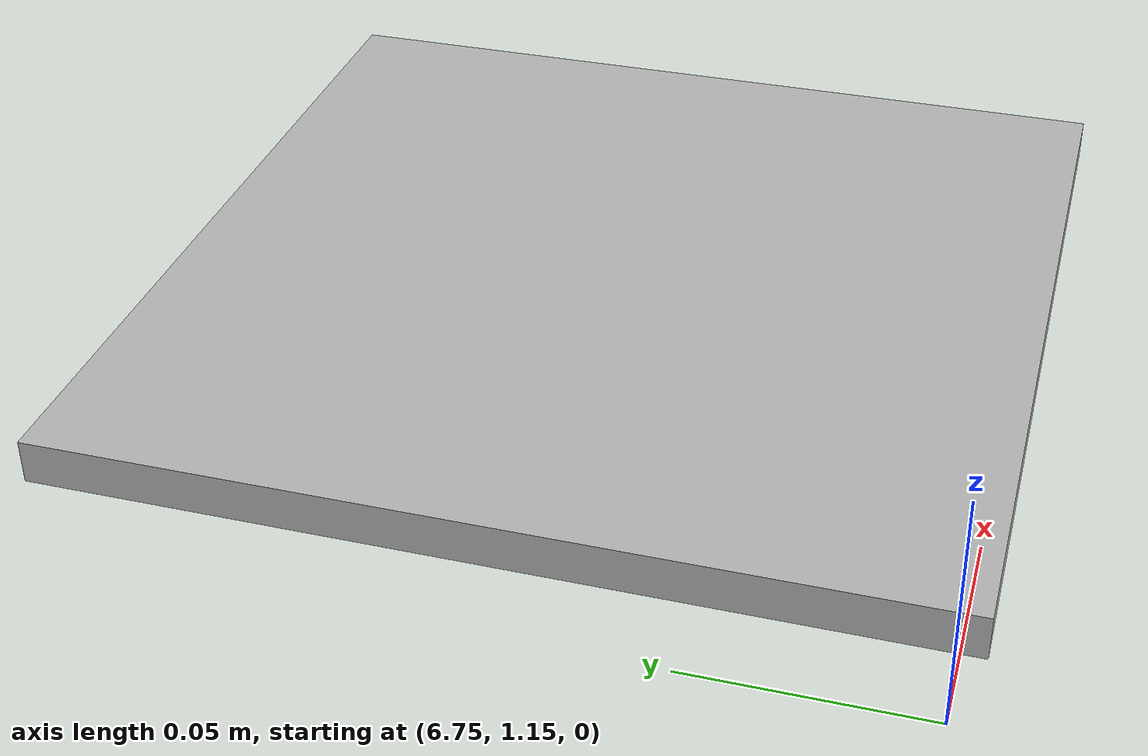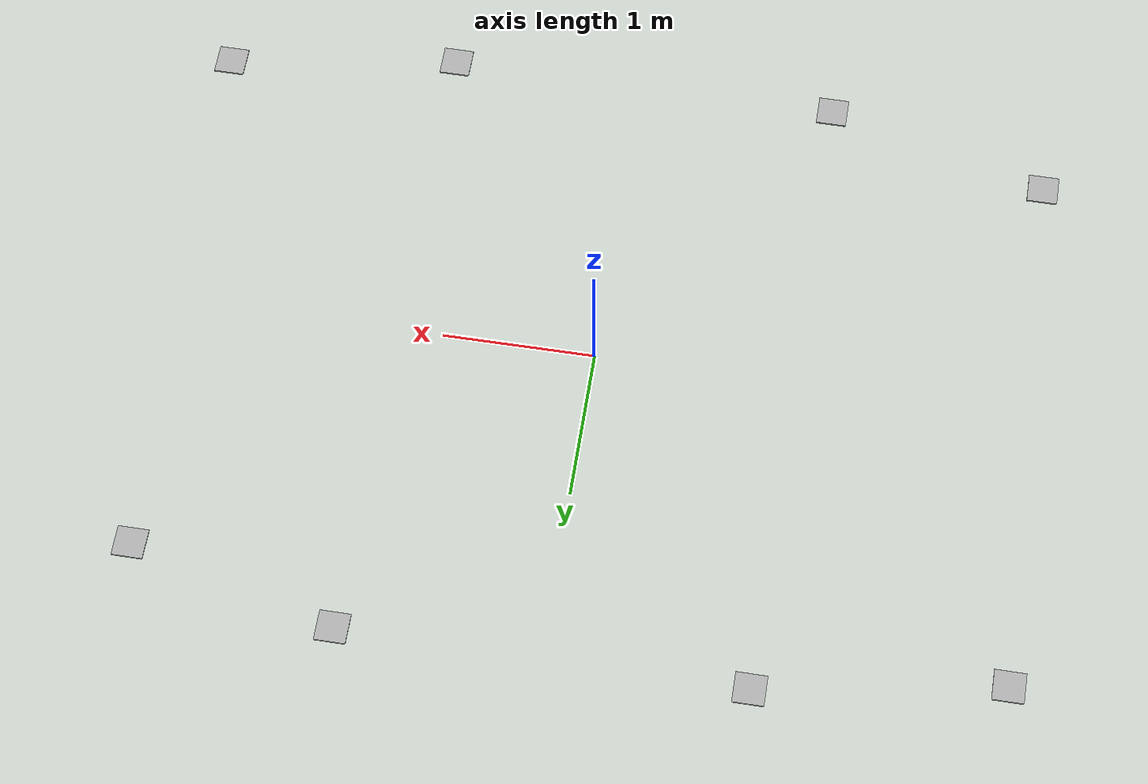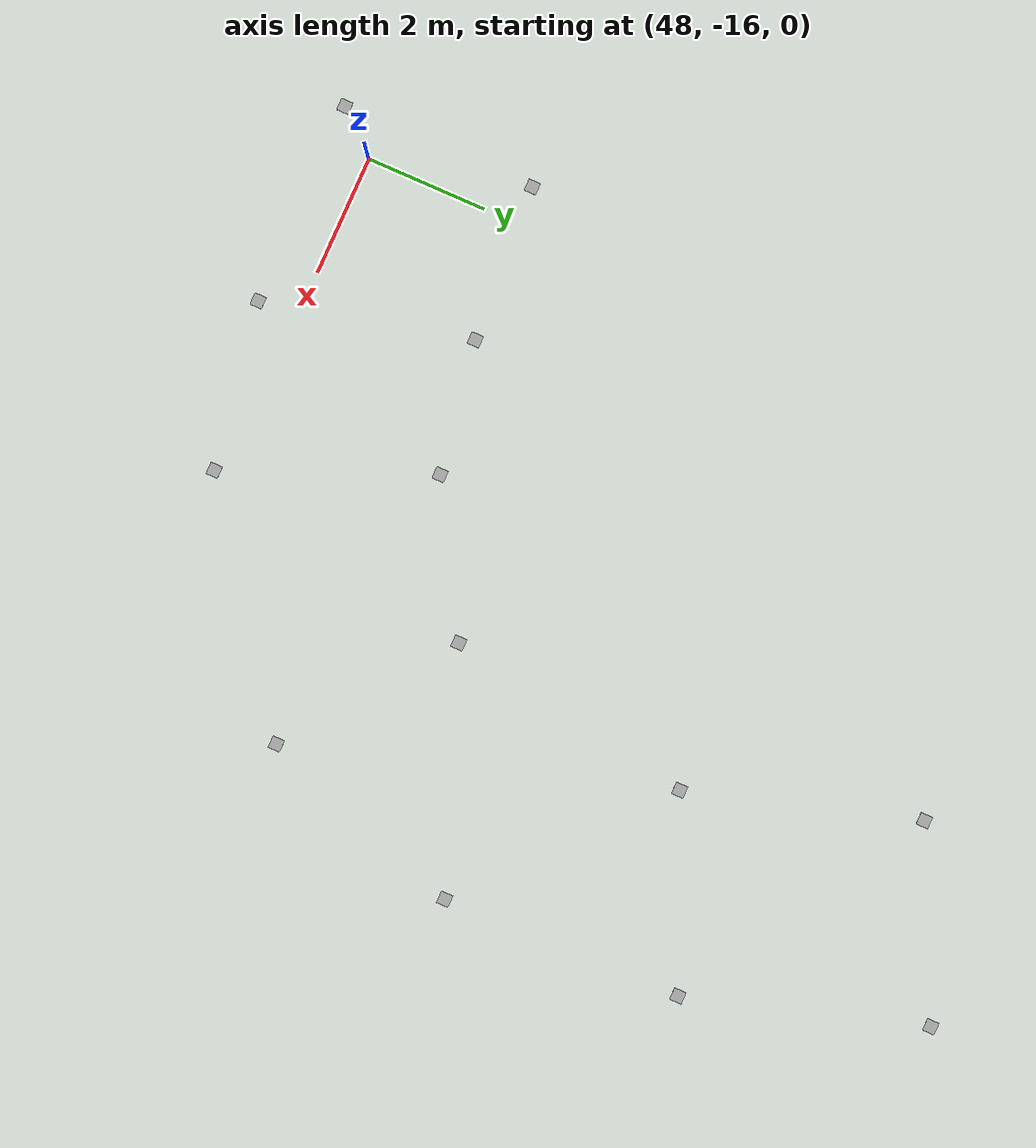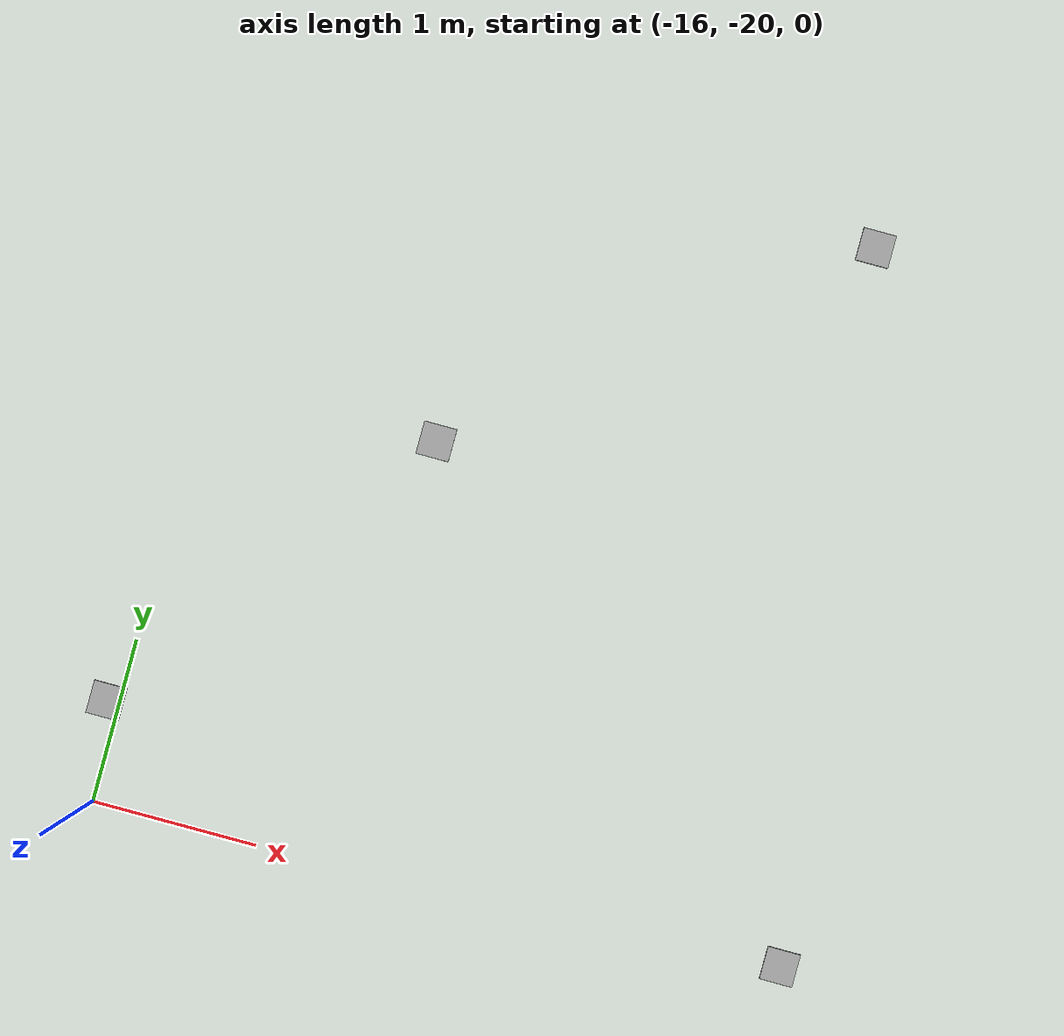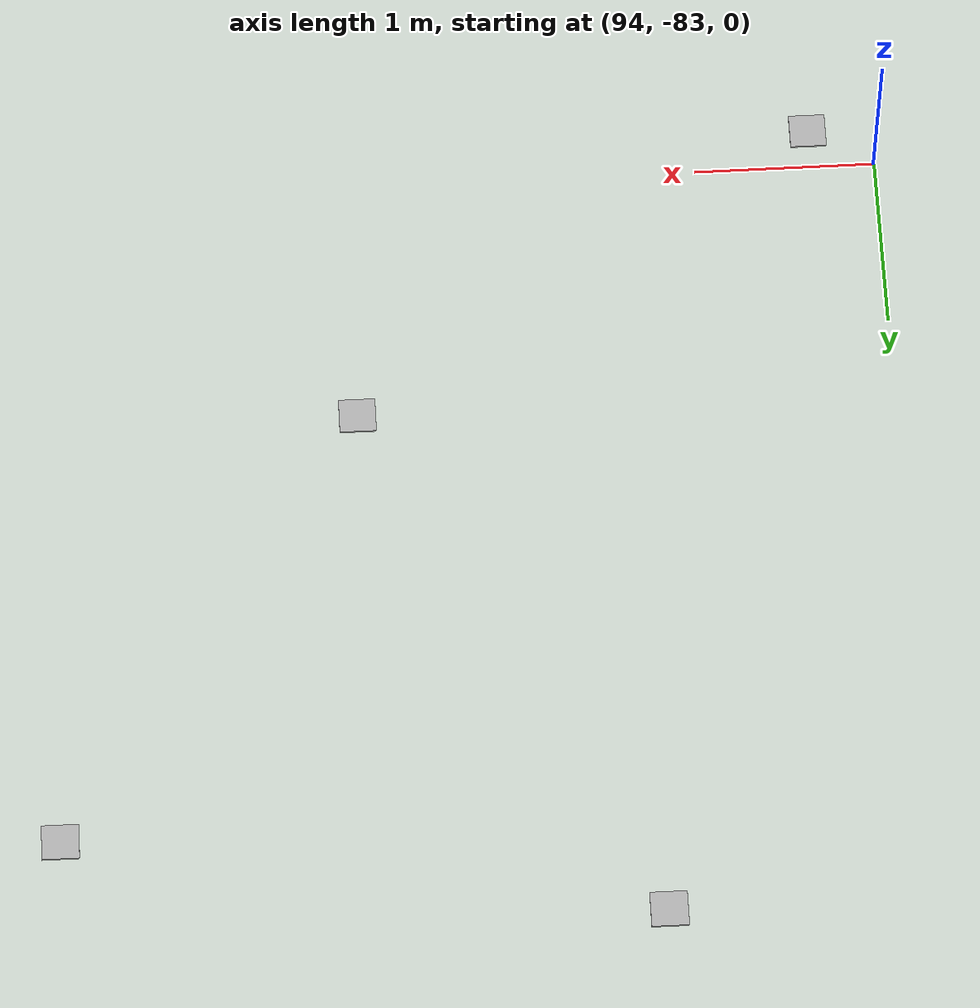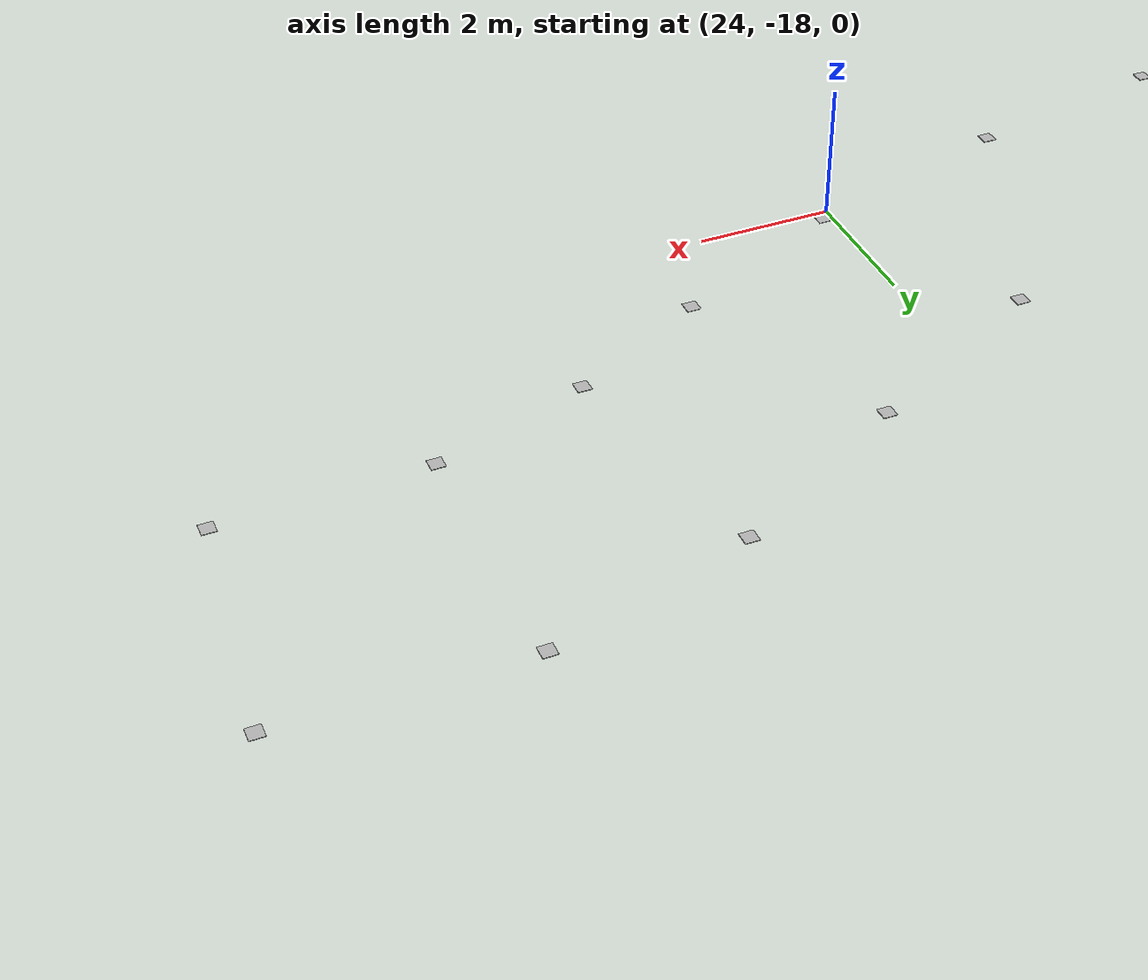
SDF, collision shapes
<?xml version='1.0' encoding='UTF-8'?>
<sdf version="1.4">
  <model name="some track">
    <include>
      <uri>model://cone_yellow</uri>
      <pose>9.974626742284766 -2.2029167187070886 0 0 0 0</pose>
      <name>cone_right</name>
    </include>
    <include>
      <uri>model://cone_yellow</uri>
      <pose>15.16262484686563 -1.7752696793713094 0 0 0 0</pose>
      <name>cone_right</name>
    </include>
    <include>
      <uri>model://cone_yellow</uri>
      <pose>20.024068649992582 -1.82049720482407 0 0 0 0</pose>
      <name>cone_right</name>
    </include>
    <include>
      <uri>model://cone_yellow</uri>
      <pose>25.048123583643697 -1.839553618013998 0 0 0 0</pose>
      <name>cone_right</name>
    </include>
    <include>
      <uri>model://cone_yellow</uri>
      <pose>30.117632798439683 -1.6937698904861642 0 0 0 0</pose>
      <name>cone_right</name>
    </include>
    <include>
      <uri>model://cone_yellow</uri>
      <pose>35.046193312556184 -1.8298244937890493 0 0 0 0</pose>
      <name>cone_right</name>
    </include>
    <include>
      <uri>model://cone_yellow</uri>
      <pose>40.11808507642335 -1.8096585848548474 0 0 0 0</pose>
      <name>cone_right</name>
    </include>
    <include>
      <uri>model://cone_yellow</uri>
      <pose>45.127869817349904 -1.8105408586303304 0 0 0 0</pose>
      <name>cone_right</name>
    </include>
    <include>
      <uri>model://cone_yellow</uri>
      <pose>50.16290451246606 -1.8605524072961803 0 0 0 0</pose>
      <name>cone_right</name>
    </include>
    <include>
      <uri>model://cone_yellow</uri>
      <pose>54.05311426125301 -3.682701153440075 0 0 0 0</pose>
      <name>cone_right</name>
    </include>
    <include>
      <uri>model://cone_yellow</uri>
      <pose>55.182072303046205 -7.417275294286891 0 0 0 0</pose>
      <name>cone_right</name>
    </include>
    <include>
      <uri>model://cone_yellow</uri>
      <pose>54.46723171925873 -11.559530231239973 0 0 0 0</pose>
      <name>cone_right</name>
    </include>
    <include>
      <uri>model://cone_yellow</uri>
      <pose>47.35938849964421 -13.435286632107701 0 0 0 0</pose>
      <name>cone_right</name>
    </include>
    <include>
      <uri>model://cone_yellow</uri>
      <pose>42.34410515162982 -13.47140135095947 0 0 0 0</pose>
      <name>cone_right</name>
    </include>
    <include>
      <uri>model://cone_yellow</uri>
      <pose>37.96384081323876 -12.192860729353368 0 0 0 0</pose>
      <name>cone_right</name>
    </include>
    <include>
      <uri>model://cone_yellow</uri>
      <pose>22.572583728065805 -15.031065785112249 0 0 0 0</pose>
      <name>cone_right</name>
    </include>
    <include>
      <uri>model://cone_yellow</uri>
      <pose>13.140471765521278 -16.6858117511077 0 0 0 0</pose>
      <name>cone_right</name>
    </include>
    <include>
      <uri>model://cone_yellow</uri>
      <pose>-0.9328711948779487 -15.26607686645293 0 0 0 0</pose>
      <name>cone_right</name>
    </include>
    <include>
      <uri>model://cone_yellow</uri>
      <pose>-6.163387292282273 -14.709419755278635 0 0 0 0</pose>
      <name>cone_right</name>
    </include>
    <include>
      <uri>model://cone_yellow</uri>
      <pose>-16.0831872441536 -19.400141970712625 0 0 0 0</pose>
      <name>cone_right</name>
    </include>
    <include>
      <uri>model://cone_yellow</uri>
      <pose>-15.790871672730743 -30.6387752641451 0 0 0 0</pose>
      <name>cone_right</name>
    </include>
    <include>
      <uri>model://cone_yellow</uri>
      <pose>-4.737393916439977 -33.906373876907914 0 0 0 0</pose>
      <name>cone_right</name>
    </include>
    <include>
      <uri>model://cone_yellow</uri>
      <pose>0.47175312414863224 -33.75270419239926 0 0 0 0</pose>
      <name>cone_right</name>
    </include>
    <include>
      <uri>model://cone_yellow</uri>
      <pose>5.404836080760037 -33.85609641923817 0 0 0 0</pose>
      <name>cone_right</name>
    </include>
    <include>
      <uri>model://cone_yellow</uri>
      <pose>10.414006045149083 -33.9896179071174 0 0 0 0</pose>
      <name>cone_right</name>
    </include>
    <include>
      <uri>model://cone_yellow</uri>
      <pose>15.441171088441669 -34.09631129331778 0 0 0 0</pose>
      <name>cone_right</name>
    </include>
    <include>
      <uri>model://cone_yellow</uri>
      <pose>20.464423042454456 -34.19182810301188 0 0 0 0</pose>
      <name>cone_right</name>
    </include>
    <include>
      <uri>model://cone_yellow</uri>
      <pose>25.508695817423035 -34.21593968332291 0 0 0 0</pose>
      <name>cone_right</name>
    </include>
    <include>
      <uri>model://cone_yellow</uri>
      <pose>30.545143298724884 -34.19306111892778 0 0 0 0</pose>
      <name>cone_right</name>
    </include>
    <include>
      <uri>model://cone_yellow</uri>
      <pose>34.2981581616849 -36.2016308020166 0 0 0 0</pose>
      <name>cone_right</name>
    </include>
    <include>
      <uri>model://cone_yellow</uri>
      <pose>35.544250930426514 -39.98303656681601 0 0 0 0</pose>
      <name>cone_right</name>
    </include>
    <include>
      <uri>model://cone_yellow</uri>
      <pose>35.553999334723315 -44.4101798802908 0 0 0 0</pose>
      <name>cone_right</name>
    </include>
    <include>
      <uri>model://cone_yellow</uri>
      <pose>35.562727022731686 -49.36101406149518 0 0 0 0</pose>
      <name>cone_right</name>
    </include>
    <include>
      <uri>model://cone_yellow</uri>
      <pose>35.91338939950407 -54.54546219249451 0 0 0 0</pose>
      <name>cone_right</name>
    </include>
    <include>
      <uri>model://cone_yellow</uri>
      <pose>42.48254921265821 -63.36559039921151 0 0 0 0</pose>
      <name>cone_right</name>
    </include>
    <include>
      <uri>model://cone_yellow</uri>
      <pose>46.631003174448914 -66.28277418242034 0 0 0 0</pose>
      <name>cone_right</name>
    </include>
    <include>
      <uri>model://cone_yellow</uri>
      <pose>50.57599390837056 -69.2798012773881 0 0 0 0</pose>
      <name>cone_right</name>
    </include>
    <include>
      <uri>model://cone_yellow</uri>
      <pose>55.59124666897539 -71.39111129438155 0 0 0 0</pose>
      <name>cone_right</name>
    </include>
    <include>
      <uri>model://cone_yellow</uri>
      <pose>60.71082204045601 -72.69907873136813 0 0 0 0</pose>
      <name>cone_right</name>
    </include>
    <include>
      <uri>model://cone_yellow</uri>
      <pose>65.93784774116 -73.16504421701097 0 0 0 0</pose>
      <name>cone_right</name>
    </include>
    <include>
      <uri>model://cone_yellow</uri>
      <pose>71.2104033369746 -72.82510078877137 0 0 0 0</pose>
      <name>cone_right</name>
    </include>
    <include>
      <uri>model://cone_yellow</uri>
      <pose>76.23845619630744 -72.43756240459692 0 0 0 0</pose>
      <name>cone_right</name>
    </include>
    <include>
      <uri>model://cone_yellow</uri>
      <pose>81.30876375084367 -71.78648616719427 0 0 0 0</pose>
      <name>cone_right</name>
    </include>
    <include>
      <uri>model://cone_yellow</uri>
      <pose>86.33522749315435 -70.5665461178704 0 0 0 0</pose>
      <name>cone_right</name>
    </include>
    <include>
      <uri>model://cone_yellow</uri>
      <pose>91.21411257192196 -69.65654720353531 0 0 0 0</pose>
      <name>cone_right</name>
    </include>
    <include>
      <uri>model://cone_yellow</uri>
      <pose>95.53902683751899 -70.81408592485953 0 0 0 0</pose>
      <name>cone_right</name>
    </include>
    <include>
      <uri>model://cone_yellow</uri>
      <pose>96.41197589698213 -74.38563304053497 0 0 0 0</pose>
      <name>cone_right</name>
    </include>
    <include>
      <uri>model://cone_yellow</uri>
      <pose>95.42891986562933 -78.47443141225924 0 0 0 0</pose>
      <name>cone_right</name>
    </include>
    <include>
      <uri>model://cone_yellow</uri>
      <pose>92.21847139763176 -80.7900144350663 0 0 0 0</pose>
      <name>cone_right</name>
    </include>
    <include>
      <uri>model://cone_yellow</uri>
      <pose>88.03693660234565 -81.47379839073365 0 0 0 0</pose>
      <name>cone_right</name>
    </include>
    <include>
      <uri>model://cone_yellow</uri>
      <pose>83.17469691771451 -82.18062454763648 0 0 0 0</pose>
      <name>cone_right</name>
    </include>
    <include>
      <uri>model://cone_yellow</uri>
      <pose>78.23558134788544 -82.72929102843194 0 0 0 0</pose>
      <name>cone_right</name>
    </include>
    <include>
      <uri>model://cone_yellow</uri>
      <pose>73.33338113027452 -82.89234298593861 0 0 0 0</pose>
      <name>cone_right</name>
    </include>
    <include>
      <uri>model://cone_yellow</uri>
      <pose>68.48773712753807 -82.57240486189922 0 0 0 0</pose>
      <name>cone_right</name>
    </include>
    <include>
      <uri>model://cone_yellow</uri>
      <pose>63.64739036787546 -81.86666800159297 0 0 0 0</pose>
      <name>cone_right</name>
    </include>
    <include>
      <uri>model://cone_yellow</uri>
      <pose>58.68250162995368 -81.13000599623224 0 0 0 0</pose>
      <name>cone_right</name>
    </include>
    <include>
      <uri>model://cone_yellow</uri>
      <pose>53.7096180914086 -80.40990263591976 0 0 0 0</pose>
      <name>cone_right</name>
    </include>
    <include>
      <uri>model://cone_yellow</uri>
      <pose>48.95204537564354 -79.30283710637333 0 0 0 0</pose>
      <name>cone_right</name>
    </include>
    <include>
      <uri>model://cone_yellow</uri>
      <pose>44.32174398627927 -77.76534550554143 0 0 0 0</pose>
      <name>cone_right</name>
    </include>
    <include>
      <uri>model://cone_yellow</uri>
      <pose>39.86819674481459 -75.79936061178553 0 0 0 0</pose>
      <name>cone_right</name>
    </include>
    <include>
      <uri>model://cone_yellow</uri>
      <pose>35.7314195045187 -73.31531345554588 0 0 0 0</pose>
      <name>cone_right</name>
    </include>
    <include>
      <uri>model://cone_yellow</uri>
      <pose>32.02602318627958 -70.28480365856116 0 0 0 0</pose>
      <name>cone_right</name>
    </include>
    <include>
      <uri>model://cone_yellow</uri>
      <pose>28.46300811247347 -66.91862869751428 0 0 0 0</pose>
      <name>cone_right</name>
    </include>
    <include>
      <uri>model://cone_yellow</uri>
      <pose>24.361411394161117 -63.75184122445791 0 0 0 0</pose>
      <name>cone_right</name>
    </include>
    <include>
      <uri>model://cone_yellow</uri>
      <pose>19.803434878774826 -61.13473725109297 0 0 0 0</pose>
      <name>cone_right</name>
    </include>
    <include>
      <uri>model://cone_yellow</uri>
      <pose>15.06100357682075 -59.032752069839034 0 0 0 0</pose>
      <name>cone_right</name>
    </include>
    <include>
      <uri>model://cone_yellow</uri>
      <pose>10.283454450879042 -57.22110036490955 0 0 0 0</pose>
      <name>cone_right</name>
    </include>
    <include>
      <uri>model://cone_yellow</uri>
      <pose>5.39615701985935 -55.70143713348857 0 0 0 0</pose>
      <name>cone_right</name>
    </include>
    <include>
      <uri>model://cone_yellow</uri>
      <pose>0.3834728707068623 -54.55082050394972 0 0 0 0</pose>
      <name>cone_right</name>
    </include>
    <include>
      <uri>model://cone_yellow</uri>
      <pose>-4.608723670726846 -53.60899979833784 0 0 0 0</pose>
      <name>cone_right</name>
    </include>
    <include>
      <uri>model://cone_yellow</uri>
      <pose>-9.585414903289463 -52.73018091752576 0 0 0 0</pose>
      <name>cone_right</name>
    </include>
    <include>
      <uri>model://cone_yellow</uri>
      <pose>-14.368265154992319 -51.57220862204564 0 0 0 0</pose>
      <name>cone_right</name>
    </include>
    <include>
      <uri>model://cone_yellow</uri>
      <pose>-18.71565577164516 -49.66739256307803 0 0 0 0</pose>
      <name>cone_right</name>
    </include>
    <include>
      <uri>model://cone_yellow</uri>
      <pose>-22.49737314774531 -46.89131485701437 0 0 0 0</pose>
      <name>cone_right</name>
    </include>
    <include>
      <uri>model://cone_yellow</uri>
      <pose>-25.55647872129714 -43.3402282155335 0 0 0 0</pose>
      <name>cone_right</name>
    </include>
    <include>
      <uri>model://cone_yellow</uri>
      <pose>-27.819563227626595 -39.20863269659605 0 0 0 0</pose>
      <name>cone_right</name>
    </include>
    <include>
      <uri>model://cone_yellow</uri>
      <pose>-29.247907362785796 -34.71139434937663 0 0 0 0</pose>
      <name>cone_right</name>
    </include>
    <include>
      <uri>model://cone_yellow</uri>
      <pose>-29.96924557630646 -29.992076524493424 0 0 0 0</pose>
      <name>cone_right</name>
    </include>
    <include>
      <uri>model://cone_yellow</uri>
      <pose>-30.05330554304526 -25.192772675808396 0 0 0 0</pose>
      <name>cone_right</name>
    </include>
    <include>
      <uri>model://cone_yellow</uri>
      <pose>-29.464333016561564 -20.39276538166149 0 0 0 0</pose>
      <name>cone_right</name>
    </include>
    <include>
      <uri>model://cone_yellow</uri>
      <pose>-28.099231782007838 -15.766841707714303 0 0 0 0</pose>
      <name>cone_right</name>
    </include>
    <include>
      <uri>model://cone_yellow</uri>
      <pose>-25.70390505408773 -11.876879741564181 0 0 0 0</pose>
      <name>cone_right</name>
    </include>
    <include>
      <uri>model://cone_yellow</uri>
      <pose>-22.289822937049983 -8.827606271212028 0 0 0 0</pose>
      <name>cone_right</name>
    </include>
    <include>
      <uri>model://cone_yellow</uri>
      <pose>-18.28572122528511 -6.164549953595157 0 0 0 0</pose>
      <name>cone_right</name>
    </include>
    <include>
      <uri>model://cone_yellow</uri>
      <pose>-13.992704007842805 -3.9417246883576196 0 0 0 0</pose>
      <name>cone_right</name>
    </include>
    <include>
      <uri>model://cone_yellow</uri>
      <pose>-9.451609079489373 -2.3659294949403793 0 0 0 0</pose>
      <name>cone_right</name>
    </include>
    <include>
      <uri>model://cone_yellow</uri>
      <pose>52.144628515858685 -12.915418410379658 0 0 0 0</pose>
      <name>cone_right</name>
    </include>
    <include>
      <uri>model://cone_yellow</uri>
      <pose>49.95693475323198 -13.275418649799235 0 0 0 0</pose>
      <name>cone_right</name>
    </include>
    <include>
      <uri>model://cone_yellow</uri>
      <pose>34.50056275948687 -11.297390945876714 0 0 0 0</pose>
      <name>cone_right</name>
    </include>
    <include>
      <uri>model://cone_yellow</uri>
      <pose>31.110180761718585 -11.22368698940349 0 0 0 0</pose>
      <name>cone_right</name>
    </include>
    <include>
      <uri>model://cone_yellow</uri>
      <pose>28.162022502789643 -12.071282488845561 0 0 0 0</pose>
      <name>cone_right</name>
    </include>
    <include>
      <uri>model://cone_yellow</uri>
      <pose>25.471828091516983 -13.545361618310032 0 0 0 0</pose>
      <name>cone_right</name>
    </include>
    <include>
      <uri>model://cone_yellow</uri>
      <pose>19.98088333426183 -15.42481250837723 0 0 0 0</pose>
      <name>cone_right</name>
    </include>
    <include>
      <uri>model://cone_yellow</uri>
      <pose>17.0695770535695 -16.125000094872853 0 0 0 0</pose>
      <name>cone_right</name>
    </include>
    <include>
      <uri>model://cone_yellow</uri>
      <pose>5.473572757845766 -16.927440785730788 0 0 0 0</pose>
      <name>cone_right</name>
    </include>
    <include>
      <uri>model://cone_yellow</uri>
      <pose>2.661195145169888 -15.869318515615106 0 0 0 0</pose>
      <name>cone_right</name>
    </include>
    <include>
      <uri>model://cone_yellow</uri>
      <pose>-9.416193845062601 -14.949235759567564 0 0 0 0</pose>
      <name>cone_right</name>
    </include>
    <include>
      <uri>model://cone_yellow</uri>
      <pose>-12.37549371717472 -15.592561818722373 0 0 0 0</pose>
      <name>cone_right</name>
    </include>
    <include>
      <uri>model://cone_yellow</uri>
      <pose>-14.594968621258808 -17.393874784355837 0 0 0 0</pose>
      <name>cone_right</name>
    </include>
    <include>
      <uri>model://cone_yellow</uri>
      <pose>-17.361270675624496 -22.604815863509792 0 0 0 0</pose>
      <name>cone_right</name>
    </include>
    <include>
      <uri>model://cone_yellow</uri>
      <pose>-17.618601099286423 -26.81860155097379 0 0 0 0</pose>
      <name>cone_right</name>
    </include>
    <include>
      <uri>model://cone_yellow</uri>
      <pose>-12.735549913487532 -32.372976235005815 0 0 0 0</pose>
      <name>cone_right</name>
    </include>
    <include>
      <uri>model://cone_yellow</uri>
      <pose>-9.772707752569644 -33.53248293628629 0 0 0 0</pose>
      <name>cone_right</name>
    </include>
    <include>
      <uri>model://cone_yellow</uri>
      <pose>-6.982655840185899 -33.8544120030998 0 0 0 0</pose>
      <name>cone_right</name>
    </include>
    <include>
      <uri>model://cone_yellow</uri>
      <pose>9.395173753788118 -17.000823611972805 0 0 0 0</pose>
      <name>cone_right</name>
    </include>
    <include>
      <uri>model://cone_yellow</uri>
      <pose>37.061390684035416 -58.305924395508946 0 0 0 0</pose>
      <name>cone_right</name>
    </include>
    <include>
      <uri>model://cone_yellow</uri>
      <pose>39.478408075757486 -61.240874085457186 0 0 0 0</pose>
      <name>cone_right</name>
    </include>
    <include>
      <uri>model://cone_yellow</uri>
      <pose>6.971238366363334 -2.0872129506042114 0 0 0 0</pose>
      <name>cone_right</name>
    </include>
    <include>
      <uri>model://cone_yellow</uri>
      <pose>2.8301677695370095 -1.893100266377978 0 0 0 0</pose>
      <name>cone_right</name>
    </include>
    <include>
      <uri>model://cone_yellow</uri>
      <pose>-2.7667479589860733 -1.7313396961894512 0 0 0 0</pose>
      <name>cone_right</name>
    </include>
    <include>
      <uri>model://cone_yellow</uri>
      <pose>-6.19607204698287 -1.9578044944533914 0 0 0 0</pose>
      <name>cone_right</name>
    </include>
    <include>
      <uri>model://cone_blue</uri>
      <pose>10.0669693986924 1.0457711446937004 0 0 0 0</pose>
      <name>cone_left</name>
    </include>
    <include>
      <uri>model://cone_blue</uri>
      <pose>14.88922570837325 1.463210351611069 0 0 0 0</pose>
      <name>cone_left</name>
    </include>
    <include>
      <uri>model://cone_blue</uri>
      <pose>20.049698426089638 1.42940173430884 0 0 0 0</pose>
      <name>cone_left</name>
    </include>
    <include>
      <uri>model://cone_blue</uri>
      <pose>25.06044203944955 1.4104230366170103 0 0 0 0</pose>
      <name>cone_left</name>
    </include>
    <include>
      <uri>model://cone_blue</uri>
      <pose>30.02365443338204 1.5548710664219845 0 0 0 0</pose>
      <name>cone_left</name>
    </include>
    <include>
      <uri>model://cone_blue</uri>
      <pose>35.134197886116525 1.4189837792600797 0 0 0 0</pose>
      <name>cone_left</name>
    </include>
    <include>
      <uri>model://cone_blue</uri>
      <pose>40.104655928806515 1.4403136701027677 0 0 0 0</pose>
      <name>cone_left</name>
    </include>
    <include>
      <uri>model://cone_blue</uri>
      <pose>45.12843240586645 1.4394590926764632 0 0 0 0</pose>
      <name>cone_left</name>
    </include>
    <include>
      <uri>model://cone_blue</uri>
      <pose>50.195134445101836 1.3892877782271469 0 0 0 0</pose>
      <name>cone_left</name>
    </include>
    <include>
      <uri>model://cone_blue</uri>
      <pose>58.16648999979926 -6.130515405532516 0 0 0 0</pose>
      <name>cone_left</name>
    </include>
    <include>
      <uri>model://cone_blue</uri>
      <pose>53.5330061092864 -16.220932198307565 0 0 0 0</pose>
      <name>cone_left</name>
    </include>
    <include>
      <uri>model://cone_blue</uri>
      <pose>47.39066405599229 -16.68513614240431 0 0 0 0</pose>
      <name>cone_left</name>
    </include>
    <include>
      <uri>model://cone_blue</uri>
      <pose>42.367510664307474 -16.721317070170706 0 0 0 0</pose>
      <name>cone_left</name>
    </include>
    <include>
      <uri>model://cone_blue</uri>
      <pose>37.09581801053655 -15.324798853580761 0 0 0 0</pose>
      <name>cone_left</name>
    </include>
    <include>
      <uri>model://cone_blue</uri>
      <pose>24.129643661699884 -17.88379506828502 0 0 0 0</pose>
      <name>cone_left</name>
    </include>
    <include>
      <uri>model://cone_blue</uri>
      <pose>13.783416085594196 -19.87158051253499 0 0 0 0</pose>
      <name>cone_left</name>
    </include>
    <include>
      <uri>model://cone_blue</uri>
      <pose>-1.778270402957219 -18.4041973515489 0 0 0 0</pose>
      <name>cone_left</name>
    </include>
    <include>
      <uri>model://cone_blue</uri>
      <pose>-6.494391397680218 -17.94251985923609 0 0 0 0</pose>
      <name>cone_left</name>
    </include>
    <include>
      <uri>model://cone_blue</uri>
      <pose>-12.819158233069379 -29.32294121969419 0 0 0 0</pose>
      <name>cone_left</name>
    </include>
    <include>
      <uri>model://cone_blue</uri>
      <pose>-4.472771992295161 -30.667164831899875 0 0 0 0</pose>
      <name>cone_left</name>
    </include>
    <include>
      <uri>model://cone_blue</uri>
      <pose>0.3694606279000009 -30.50431439971562 0 0 0 0</pose>
      <name>cone_left</name>
    </include>
    <include>
      <uri>model://cone_blue</uri>
      <pose>5.471491755256085 -30.60678002635528 0 0 0 0</pose>
      <name>cone_left</name>
    </include>
    <include>
      <uri>model://cone_blue</uri>
      <pose>10.500585565290848 -30.740771344613712 0 0 0 0</pose>
      <name>cone_left</name>
    </include>
    <include>
      <uri>model://cone_blue</uri>
      <pose>15.510116046531559 -30.847042669034163 0 0 0 0</pose>
      <name>cone_left</name>
    </include>
    <include>
      <uri>model://cone_blue</uri>
      <pose>20.526207860623117 -30.942415442815598 0 0 0 0</pose>
      <name>cone_left</name>
    </include>
    <include>
      <uri>model://cone_blue</uri>
      <pose>25.52412409588631 -30.96597630380251 0 0 0 0</pose>
      <name>cone_left</name>
    </include>
    <include>
      <uri>model://cone_blue</uri>
      <pose>30.530334620371402 -30.943094857095907 0 0 0 0</pose>
      <name>cone_left</name>
    </include>
    <include>
      <uri>model://cone_blue</uri>
      <pose>38.80261162704733 -44.31521581255278 0 0 0 0</pose>
      <name>cone_left</name>
    </include>
    <include>
      <uri>model://cone_blue</uri>
      <pose>38.81272124556394 -49.35488612897741 0 0 0 0</pose>
      <name>cone_left</name>
    </include>
    <include>
      <uri>model://cone_blue</uri>
      <pose>39.15582911823573 -54.32391158791103 0 0 0 0</pose>
      <name>cone_left</name>
    </include>
    <include>
      <uri>model://cone_blue</uri>
      <pose>44.46427216624538 -60.78968781269435 0 0 0 0</pose>
      <name>cone_left</name>
    </include>
    <include>
      <uri>model://cone_blue</uri>
      <pose>48.499662747445065 -63.623712054479384 0 0 0 0</pose>
      <name>cone_left</name>
    </include>
    <include>
      <uri>model://cone_blue</uri>
      <pose>52.5414521585339 -66.69146708975605 0 0 0 0</pose>
      <name>cone_left</name>
    </include>
    <include>
      <uri>model://cone_blue</uri>
      <pose>56.82185317939293 -68.38310404430419 0 0 0 0</pose>
      <name>cone_left</name>
    </include>
    <include>
      <uri>model://cone_blue</uri>
      <pose>61.505653518791064 -69.54777060282092 0 0 0 0</pose>
      <name>cone_left</name>
    </include>
    <include>
      <uri>model://cone_blue</uri>
      <pose>66.21326241663019 -69.92673497351126 0 0 0 0</pose>
      <name>cone_left</name>
    </include>
    <include>
      <uri>model://cone_blue</uri>
      <pose>70.98967369973661 -69.58260507909883 0 0 0 0</pose>
      <name>cone_left</name>
    </include>
    <include>
      <uri>model://cone_blue</uri>
      <pose>75.98866043025252 -69.19717630487654 0 0 0 0</pose>
      <name>cone_left</name>
    </include>
    <include>
      <uri>model://cone_blue</uri>
      <pose>80.8934889191589 -68.56312661322436 0 0 0 0</pose>
      <name>cone_left</name>
    </include>
    <include>
      <uri>model://cone_blue</uri>
      <pose>85.56248602825733 -67.40974859056068 0 0 0 0</pose>
      <name>cone_left</name>
    </include>
    <include>
      <uri>model://cone_blue</uri>
      <pose>90.61661511621742 -66.46194287898639 0 0 0 0</pose>
      <name>cone_left</name>
    </include>
    <include>
      <uri>model://cone_blue</uri>
      <pose>96.28193030537476 -67.65013358048897 0 0 0 0</pose>
      <name>cone_left</name>
    </include>
    <include>
      <uri>model://cone_blue</uri>
      <pose>99.38448153322868 -73.07158956998975 0 0 0 0</pose>
      <name>cone_left</name>
    </include>
    <include>
      <uri>model://cone_blue</uri>
      <pose>98.63144203837189 -79.02792191180933 0 0 0 0</pose>
      <name>cone_left</name>
    </include>
    <include>
      <uri>model://cone_blue</uri>
      <pose>94.35409992933702 -83.23982887182805 0 0 0 0</pose>
      <name>cone_left</name>
    </include>
    <include>
      <uri>model://cone_blue</uri>
      <pose>88.71537194192699 -84.65219822241109 0 0 0 0</pose>
      <name>cone_left</name>
    </include>
    <include>
      <uri>model://cone_blue</uri>
      <pose>83.64449897007354 -85.3964892885109 0 0 0 0</pose>
      <name>cone_left</name>
    </include>
    <include>
      <uri>model://cone_blue</uri>
      <pose>78.59502265111524 -85.95935324912251 0 0 0 0</pose>
      <name>cone_left</name>
    </include>
    <include>
      <uri>model://cone_blue</uri>
      <pose>73.4445754013664 -86.14044024958027 0 0 0 0</pose>
      <name>cone_left</name>
    </include>
    <include>
      <uri>model://cone_blue</uri>
      <pose>68.27888233198279 -85.81568709975234 0 0 0 0</pose>
      <name>cone_left</name>
    </include>
    <include>
      <uri>model://cone_blue</uri>
      <pose>63.18185721124809 -85.08315348734921 0 0 0 0</pose>
      <name>cone_left</name>
    </include>
    <include>
      <uri>model://cone_blue</uri>
      <pose>58.20551360416657 -84.34481274365201 0 0 0 0</pose>
      <name>cone_left</name>
    </include>
    <include>
      <uri>model://cone_blue</uri>
      <pose>53.24386283816321 -83.62635596902976 0 0 0 0</pose>
      <name>cone_left</name>
    </include>
    <include>
      <uri>model://cone_blue</uri>
      <pose>48.21914759052566 -82.46912212774605 0 0 0 0</pose>
      <name>cone_left</name>
    </include>
    <include>
      <uri>model://cone_blue</uri>
      <pose>43.301887127335576 -80.85118282906734 0 0 0 0</pose>
      <name>cone_left</name>
    </include>
    <include>
      <uri>model://cone_blue</uri>
      <pose>38.56018200380479 -78.77452404213706 0 0 0 0</pose>
      <name>cone_left</name>
    </include>
    <include>
      <uri>model://cone_blue</uri>
      <pose>34.06553498257826 -76.10589202630128 0 0 0 0</pose>
      <name>cone_left</name>
    </include>
    <include>
      <uri>model://cone_blue</uri>
      <pose>29.97731260328832 -72.80775529248909 0 0 0 0</pose>
      <name>cone_left</name>
    </include>
    <include>
      <uri>model://cone_blue</uri>
      <pose>26.233241971504302 -69.28308274794271 0 0 0 0</pose>
      <name>cone_left</name>
    </include>
    <include>
      <uri>model://cone_blue</uri>
      <pose>22.379285998181345 -66.3274341493224 0 0 0 0</pose>
      <name>cone_left</name>
    </include>
    <include>
      <uri>model://cone_blue</uri>
      <pose>18.193384240980446 -63.95789805836873 0 0 0 0</pose>
      <name>cone_left</name>
    </include>
    <include>
      <uri>model://cone_blue</uri>
      <pose>13.74897845179231 -62.00614912897764 0 0 0 0</pose>
      <name>cone_left</name>
    </include>
    <include>
      <uri>model://cone_blue</uri>
      <pose>9.13250479093768 -60.26047774856577 0 0 0 0</pose>
      <name>cone_left</name>
    </include>
    <include>
      <uri>model://cone_blue</uri>
      <pose>4.4330109783018266 -58.805442562387185 0 0 0 0</pose>
      <name>cone_left</name>
    </include>
    <include>
      <uri>model://cone_blue</uri>
      <pose>-0.3407251048501915 -57.71910667981817 0 0 0 0</pose>
      <name>cone_left</name>
    </include>
    <include>
      <uri>model://cone_blue</uri>
      <pose>-5.2104789947676124 -56.8028048221282 0 0 0 0</pose>
      <name>cone_left</name>
    </include>
    <include>
      <uri>model://cone_blue</uri>
      <pose>-10.150510849022881 -55.93067565617409 0 0 0 0</pose>
      <name>cone_left</name>
    </include>
    <include>
      <uri>model://cone_blue</uri>
      <pose>-15.131012300202812 -54.73143586814131 0 0 0 0</pose>
      <name>cone_left</name>
    </include>
    <include>
      <uri>model://cone_blue</uri>
      <pose>-20.005053952371718 -52.650671351850384 0 0 0 0</pose>
      <name>cone_left</name>
    </include>
    <include>
      <uri>model://cone_blue</uri>
      <pose>-24.3992008606771 -49.52675625274387 0 0 0 0</pose>
      <name>cone_left</name>
    </include>
    <include>
      <uri>model://cone_blue</uri>
      <pose>-28.000045193422096 -45.483002794509744 0 0 0 0</pose>
      <name>cone_left</name>
    </include>
    <include>
      <uri>model://cone_blue</uri>
      <pose>-30.65792472716381 -40.79173218745088 0 0 0 0</pose>
      <name>cone_left</name>
    </include>
    <include>
      <uri>model://cone_blue</uri>
      <pose>-32.33896284345526 -35.71532463352153 0 0 0 0</pose>
      <name>cone_left</name>
    </include>
    <include>
      <uri>model://cone_blue</uri>
      <pose>-33.179820014293654 -30.49676630856204 0 0 0 0</pose>
      <name>cone_left</name>
    </include>
    <include>
      <uri>model://cone_blue</uri>
      <pose>-33.30261546341234 -25.259743127532158 0 0 0 0</pose>
      <name>cone_left</name>
    </include>
    <include>
      <uri>model://cone_blue</uri>
      <pose>-32.69141378462516 -20.00747365271569 0 0 0 0</pose>
      <name>cone_left</name>
    </include>
    <include>
      <uri>model://cone_blue</uri>
      <pose>-31.220448867037778 -14.861024999921163 0 0 0 0</pose>
      <name>cone_left</name>
    </include>
    <include>
      <uri>model://cone_blue</uri>
      <pose>-28.491147291111634 -10.205419089275292 0 0 0 0</pose>
      <name>cone_left</name>
    </include>
    <include>
      <uri>model://cone_blue</uri>
      <pose>-24.489747664559005 -6.435362305121959 0 0 0 0</pose>
      <name>cone_left</name>
    </include>
    <include>
      <uri>model://cone_blue</uri>
      <pose>-20.096154652896338 -3.4655073818323734 0 0 0 0</pose>
      <name>cone_left</name>
    </include>
    <include>
      <uri>model://cone_blue</uri>
      <pose>-15.493014889727034 -1.0587458022573817 0 0 0 0</pose>
      <name>cone_left</name>
    </include>
    <include>
      <uri>model://cone_blue</uri>
      <pose>-10.527560692455964 0.7007997279540373 0 0 0 0</pose>
      <name>cone_left</name>
    </include>
    <include>
      <uri>model://cone_blue</uri>
      <pose>54.22155297404859 0.18305183927133584 0 0 0 0</pose>
      <name>cone_left</name>
    </include>
    <include>
      <uri>model://cone_blue</uri>
      <pose>56.990785584968464 -2.281565184447352 0 0 0 0</pose>
      <name>cone_left</name>
    </include>
    <include>
      <uri>model://cone_blue</uri>
      <pose>58.264632585991606 -10.11849347335059 0 0 0 0</pose>
      <name>cone_left</name>
    </include>
    <include>
      <uri>model://cone_blue</uri>
      <pose>57.10155488940525 -13.55234191089123 0 0 0 0</pose>
      <name>cone_left</name>
    </include>
    <include>
      <uri>model://cone_blue</uri>
      <pose>50.787704536507945 -16.681574761230678 0 0 0 0</pose>
      <name>cone_left</name>
    </include>
    <include>
      <uri>model://cone_blue</uri>
      <pose>34.095190998884135 -14.761476900118218 0 0 0 0</pose>
      <name>cone_left</name>
    </include>
    <include>
      <uri>model://cone_blue</uri>
      <pose>31.147032739955197 -14.835180856591435 0 0 0 0</pose>
      <name>cone_left</name>
    </include>
    <include>
      <uri>model://cone_blue</uri>
      <pose>28.862210089285266 -15.572220421323678 0 0 0 0</pose>
      <name>cone_left</name>
    </include>
    <include>
      <uri>model://cone_blue</uri>
      <pose>26.798499308035005 -16.640927790185415 0 0 0 0</pose>
      <name>cone_left</name>
    </include>
    <include>
      <uri>model://cone_blue</uri>
      <pose>20.79162685546729 -18.888898462618734 0 0 0 0</pose>
      <name>cone_left</name>
    </include>
    <include>
      <uri>model://cone_blue</uri>
      <pose>17.548652770645454 -19.552234070877745 0 0 0 0</pose>
      <name>cone_left</name>
    </include>
    <include>
      <uri>model://cone_blue</uri>
      <pose>5.362191466254643 -20.29672485636229 0 0 0 0</pose>
      <name>cone_left</name>
    </include>
    <include>
      <uri>model://cone_blue</uri>
      <pose>2.271360624600952 -19.711973075508887 0 0 0 0</pose>
      <name>cone_left</name>
    </include>
    <include>
      <uri>model://cone_blue</uri>
      <pose>-9.416193845062601 -18.45536278196127 0 0 0 0</pose>
      <name>cone_left</name>
    </include>
    <include>
      <uri>model://cone_blue</uri>
      <pose>-11.796500263935393 -19.87068011210185 0 0 0 0</pose>
      <name>cone_left</name>
    </include>
    <include>
      <uri>model://cone_blue</uri>
      <pose>-14.048141470977228 -25.789279856326104 0 0 0 0</pose>
      <name>cone_left</name>
    </include>
    <include>
      <uri>model://cone_blue</uri>
      <pose>-13.533480623653382 -22.122321319143687 0 0 0 0</pose>
      <name>cone_left</name>
    </include>
    <include>
      <uri>model://cone_blue</uri>
      <pose>-6.911116047560675 -30.420501957089037 0 0 0 0</pose>
      <name>cone_left</name>
    </include>
    <include>
      <uri>model://cone_blue</uri>
      <pose>-9.701167959944414 -29.95549330502508 0 0 0 0</pose>
      <name>cone_left</name>
    </include>
    <include>
      <uri>model://cone_blue</uri>
      <pose>9.4383347786403 -20.32422252559065 0 0 0 0</pose>
      <name>cone_left</name>
    </include>
    <include>
      <uri>model://cone_blue</uri>
      <pose>34.12644099408719 -31.934538210827036 0 0 0 0</pose>
      <name>cone_left</name>
    </include>
    <include>
      <uri>model://cone_blue</uri>
      <pose>36.84558555977452 -34.35155560254912 0 0 0 0</pose>
      <name>cone_left</name>
    </include>
    <include>
      <uri>model://cone_blue</uri>
      <pose>38.61518757871389 -37.24334426764516 0 0 0 0</pose>
      <name>cone_left</name>
    </include>
    <include>
      <uri>model://cone_blue</uri>
      <pose>39.089958852087875 -40.69622625581956 0 0 0 0</pose>
      <name>cone_left</name>
    </include>
    <include>
      <uri>model://cone_blue</uri>
      <pose>40.514272672209806 -57.140576724500086 0 0 0 0</pose>
      <name>cone_left</name>
    </include>
    <include>
      <uri>model://cone_blue</uri>
      <pose>42.41335776570572 -59.169144892552545 0 0 0 0</pose>
      <name>cone_left</name>
    </include>
    <include>
      <uri>model://cone_blue</uri>
      <pose>93.67490398741454 -66.85614525409102 0 0 0 0</pose>
      <name>cone_left</name>
    </include>
    <include>
      <uri>model://cone_blue</uri>
      <pose>98.68948166325892 -69.92959608767302 0 0 0 0</pose>
      <name>cone_left</name>
    </include>
    <include>
      <uri>model://cone_blue</uri>
      <pose>99.43358028612616 -76.4970752373273 0 0 0 0</pose>
      <name>cone_left</name>
    </include>
    <include>
      <uri>model://cone_blue</uri>
      <pose>96.94246750522281 -81.54400502720938 0 0 0 0</pose>
      <name>cone_left</name>
    </include>
    <include>
      <uri>model://cone_blue</uri>
      <pose>91.89553771534074 -84.16452626426354 0 0 0 0</pose>
      <name>cone_left</name>
    </include>
    <include>
      <uri>model://cone_blue</uri>
      <pose>6.874182024250221 1.2450547952794722 0 0 0 0</pose>
      <name>cone_left</name>
    </include>
    <include>
      <uri>model://cone_blue</uri>
      <pose>2.668407199348483 1.7626886198827663 0 0 0 0</pose>
      <name>cone_left</name>
    </include>
    <include>
      <uri>model://cone_blue</uri>
      <pose>-2.8638043010991865 1.8597449619958795 0 0 0 0</pose>
      <name>cone_left</name>
    </include>
    <include>
      <uri>model://cone_blue</uri>
      <pose>-6.6813537575484645 1.4391674795057057 0 0 0 0</pose>
      <name>cone_left</name>
    </include>
    <include>
      <uri>model://cone_orange_big</uri>
      <pose>-1.3 2.125 0 0 0 0</pose>
      <name>cone_orange_big</name>
    </include>
    <include>
      <uri>model://cone_orange_big</uri>
      <pose>-1.3 -2.125 0 0 0 0</pose>
      <name>cone_orange_big</name>
    </include>
    <include>
      <uri>model://cone_orange_big</uri>
      <pose>1.3 2.125 0 0 0 0</pose>
      <name>cone_orange_big</name>
    </include>
    <include>
      <uri>model://cone_orange_big</uri>
      <pose>1.3 -2.125 0 0 0 0</pose>
      <name>cone_orange_big</name>
    </include>
  </model>
</sdf>

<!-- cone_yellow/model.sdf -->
<sdf version='1.4'>
  <model name="cone_yellow">
    <link name="link">
    <collision name="collision"><geometry><box><size> 0.2 0.2 0.01</size>
             </box></geometry></collision>
      <visual name="visual">
        <geometry>
          <mesh>
            <uri>model://YellowCone.dae</uri>
            <scale>1 1 1</scale>
          </mesh>
        </geometry>
        <material>
            <script>
              <uri>model://cone_yellow/materials/scripts</uri>
              <uri>model://cone_yellow/materials/textures</uri>
              <name>cone_yellow/Image</name>
            </script>
        </material>
      </visual>
    </link>
  </model>
</sdf>

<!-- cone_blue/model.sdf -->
<sdf version='1.4'>
  <model name="cone_blue">
    <link name="link">
    <collision name="collision"><geometry><box><size> 0.2 0.2 0.01</size>
             </box></geometry></collision>
      <visual name="visual">
        <geometry>
          <mesh>
            <uri>model://BlueCone.dae</uri>
            <scale>1 1 1</scale>
          </mesh>
        </geometry>
        <material>
            <script>
              <uri>model://cone_blue/materials/scripts</uri>
              <uri>model://cone_blue/materials/textures</uri>
              <name>cone_blue/Image</name>
            </script>
        </material>
      </visual>
    </link>
  </model>
</sdf>

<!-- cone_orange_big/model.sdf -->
<sdf version='1.4'>
  <model name="cone_orange_big">
    <link name="link">
    <collision name="collision"><geometry><box><size> 0.2 0.2 0.01</size>
             </box></geometry></collision>
      <visual name="visual">
        <geometry>
          <mesh>
            <uri>model://BigOrangeCone.dae</uri>
            <scale>1 1 1</scale>
          </mesh>
        </geometry>
        <material>
            <script>
              <uri>model://cone_orange_big/materials/scripts</uri>
              <uri>model://cone_orange_big/materials/textures</uri>
              <name>cone_orange_big/Image</name>
            </script>
        </material>
      </visual>
    </link>
  </model>
</sdf>
